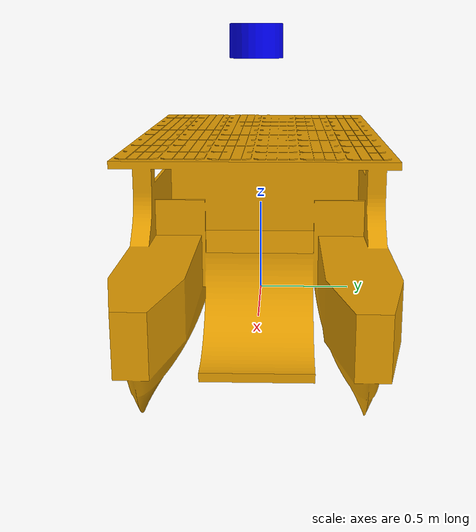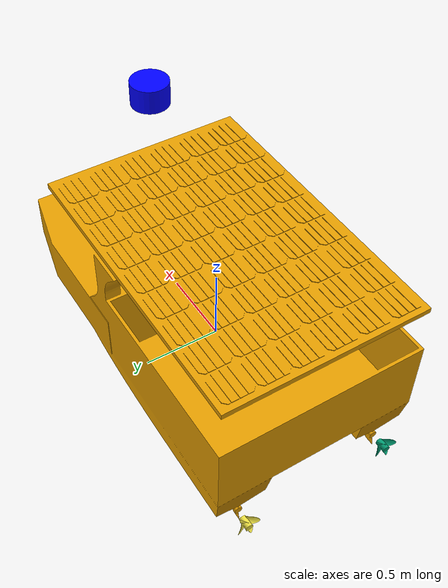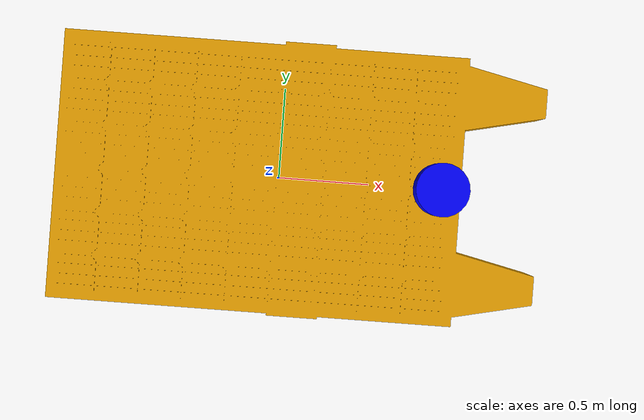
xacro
<?xml version="1.0"?>
<robot xmlns:xacro="http://www.ros.org/wiki/xacro" name="boat_1">

  <!-- ================= PARAMETERS ================= -->

  <xacro:property name="hull_mass" value="2000"/>
  <xacro:property name="prop_mass" value="50"/>
  <xacro:property name="ixx" value="5000"/>
  <xacro:property name="iyy" value="5000"/>
  <xacro:property name="izz" value="5000"/>

  <!-- ================= HULL ================= -->

  <link name="hull_1">

    <inertial>
      <origin xyz="0.055 0 -0.5" rpy="0 0 0"/>
      <mass value="${hull_mass}"/>
      <inertia ixx="${ixx}" iyy="${iyy}" izz="${izz}" ixy="0" ixz="0" iyz="0"/>
    </inertial>

    <collision>
      <geometry>
        <box size="2 1.33 1.7"/>
      </geometry>
    </collision>

    <visual>
      <geometry>
        <mesh filename="package://boat_1/meshes/boat.stl"/>
      </geometry>
    </visual>

  </link>

  <!-- ================= LiDAR ================= -->

  <link name="lidar_link">
    <inertial>
      <mass value="0.5"/>
      <inertia ixx="0.001" iyy="0.001" izz="0.001" ixy="0" ixz="0" iyz="0"/>
    </inertial>

    <visual>
      <geometry>
        <cylinder radius="0.12" length="0.15"/>
      </geometry>
      <material name="blue">
        <color rgba="0 0 1 1"/>
      </material>
    </visual>

    <collision>
      <geometry>
        <cylinder radius="0.12" length="0.15"/>
      </geometry>
    </collision>
  </link>

  <joint name="lidar_joint" type="fixed">
    <parent link="hull_1"/>
    <child link="lidar_link"/>
    <!-- FRONT CENTER, TOP OF SOLAR PANEL -->
    <origin xyz="0.75 0.0 1.4" rpy="0 0 0"/>
  </joint>

  <!-- ================= PROPELLERS ================= -->

  <link name="propeller_left">
    <inertial>
      <mass value="${prop_mass}"/>
      <inertia ixx="0.1" iyy="0.1" izz="0.1" ixy="0" ixz="0" iyz="0"/>
    </inertial>
    <visual>
      <geometry>
        <mesh filename="package://boat_1/meshes/prop.stl"/>
      </geometry>
    </visual>
  </link>

  <link name="propeller_right">
    <inertial>
      <mass value="${prop_mass}"/>
      <inertia ixx="0.1" iyy="0.1" izz="0.1" ixy="0" ixz="0" iyz="0"/>
    </inertial>
    <visual>
      <geometry>
        <mesh filename="package://boat_1/meshes/prop.stl"/>
      </geometry>
    </visual>
  </link>

  <joint name="prop_joint_left" type="continuous">
    <parent link="hull_1"/>
    <child link="propeller_left"/>
    <origin xyz="-1.1 -0.5 -0.24"/>
    <axis xyz="1 0 0"/>
  </joint>

  <joint name="prop_joint_right" type="continuous">
    <parent link="hull_1"/>
    <child link="propeller_right"/>
    <origin xyz="-1.1 0.5 -0.24"/>
    <axis xyz="-1 0 0"/>
  </joint>

  <!-- ================= GAZEBO ================= -->

  <gazebo reference="hull_1">
    <velocity_decay>
      <linear>0.1</linear>
      <angular>50</angular>
    </velocity_decay>
  </gazebo>

  <!-- ================= THRUSTER PLUGINS ================= -->

  <gazebo>
    <plugin filename="libignition-gazebo-thruster-system.so"
            name="ignition::gazebo::systems::Thruster">
      <joint_name>prop_joint_left</joint_name>
      <thrust_coefficient>0.1</thrust_coefficient>
      <fluid_density>1000</fluid_density>
      <propeller_diameter>0.2</propeller_diameter>
      <velocity_control>true</velocity_control>
      <p_gain>0.1</p_gain>
    </plugin>

    <plugin filename="libignition-gazebo-thruster-system.so"
            name="ignition::gazebo::systems::Thruster">
      <joint_name>prop_joint_right</joint_name>
      <thrust_coefficient>0.1</thrust_coefficient>
      <fluid_density>1000</fluid_density>
      <propeller_diameter>0.2</propeller_diameter>
      <velocity_control>true</velocity_control>
      <p_gain>0.1</p_gain>
    </plugin>
  </gazebo>

  <!-- ================= HYDRODYNAMICS ================= -->

  <gazebo>
    <plugin filename="libignition-gazebo-hydrodynamics-system.so"
            name="ignition::gazebo::systems::Hydrodynamics">
      <link_name>hull_1</link_name>
      <linear_drag_coefficients>1 50 50</linear_drag_coefficients>
      <angular_drag_coefficients>5000 5000 5000</angular_drag_coefficients>
    </plugin>
  </gazebo>

  <!-- ================= LIDAR SENSOR ================= -->

  <gazebo reference="lidar_link">
    <sensor name="lidar_sensor" type="gpu_ray">
      <visualize>true</visualize>
      <update_rate>10</update_rate>

      <ray>
        <scan>
          <horizontal>
            <samples>360</samples>
            <min_angle>-3.14159</min_angle>
            <max_angle>3.14159</max_angle>
          </horizontal>
        </scan>

        <range>
          <min>0.2</min>
          <max>30.0</max>
        </range>
      </ray>

      <plugin name="lidar_pub" filename="libgazebo_ros_ray_sensor.so">
        <ros>
          <namespace>/boat_1</namespace>
          <remapping>scan:=scan</remapping>
        </ros>
        <frame_name>lidar_link</frame_name>
      </plugin>
    </sensor>
  </gazebo>

</robot>
